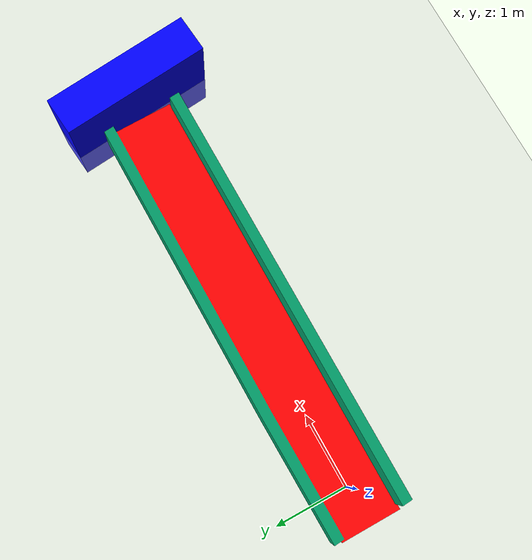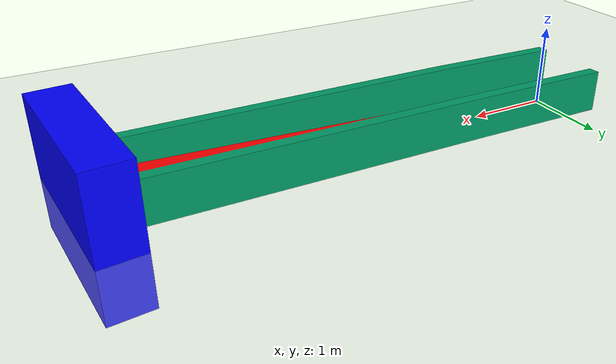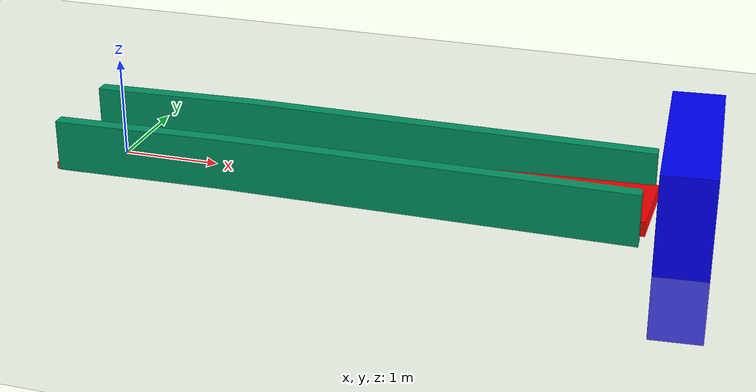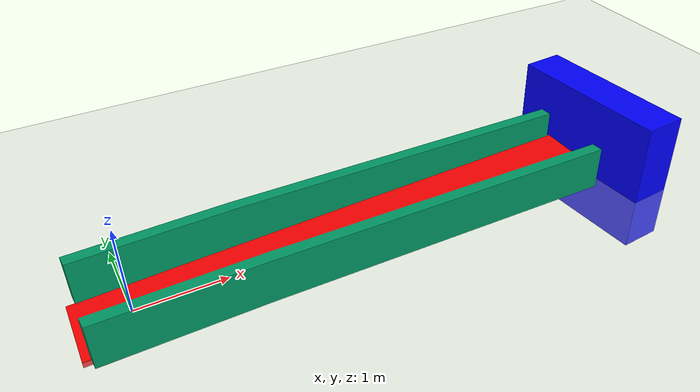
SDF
<sdf version="1.4">
  <world name="default">

    <scene>
      <ambient>0.4 0.4 0.4 1</ambient>
      <background>0.7 0.7 0.7 1</background>
      <shadows>true</shadows>
    </scene>

    <!-- A global light source -->
    <include>
      <uri>model://sun</uri>
    </include>

    <!-- A ground plane -->
    <include>
      <uri>model://ground_plane</uri>
    </include>

    <!-- cenario -->
    <include>
      <uri>model://rampa</uri>
    </include>

    <!-- caixa_azul -->
    <include>
      <uri>model://formas/caixa_azul</uri>
      <pose> 5.74 -0.05 0.162 0 0 -1.4848</pose>
    </include>

    <physics type="ode">
      <real_time_update_rate>1000.0</real_time_update_rate>
      <max_step_size>0.001</max_step_size>
      <real_time_factor>1</real_time_factor>
      <ode>
        <solver>
          <type>quick</type>
          <iters>150</iters>
          <precon_iters>0</precon_iters>
          <sor>1.400000</sor>
          <use_dynamic_moi_rescaling>1</use_dynamic_moi_rescaling>
        </solver>
        <constraints>
          <cfm>0.00001</cfm>
          <erp>0.2</erp>
          <contact_max_correcting_vel>2000.000000</contact_max_correcting_vel>
          <contact_surface_layer>0.01000</contact_surface_layer>
        </constraints>
      </ode>
    </physics>
  </world>

</sdf>

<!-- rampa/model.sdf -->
<sdf version='1.6'>
  <model name='rampa'>
    <link name='link'>
      <self_collide>0</self_collide>
      <enable_wind>0</enable_wind>
      <kinematic>0</kinematic>
      <pose frame=''>0 0 0 0 -0 0</pose>
      <gravity>1</gravity>
      <inertial>
        <mass>1</mass>
        <pose frame=''>0 0 0 0 -0 0</pose>
        <inertia>
          <ixx>1</ixx>
          <ixy>0</ixy>
          <ixz>0</ixz>
          <iyy>1</iyy>
          <iyz>0</iyz>
          <izz>1</izz>
        </inertia>
      </inertial>
      <visual name='visual'>
        <geometry>
          <mesh>
            <uri>/home/borg/catkin_ws/src/my_simulation/models/rampinha/meshes/rampa.dae</uri>
          </mesh>
        </geometry>
        <pose frame=''>0 0 0 0 -0 0</pose>
        <transparency>0</transparency>
        <cast_shadows>1</cast_shadows>
        <material>
          <shader type='vertex'>
            <normal_map>__default__</normal_map>
          </shader>
        </material>
      </visual>
      <collision name='collision'>
        <laser_retro>0</laser_retro>
        <max_contacts>10</max_contacts>
        <pose frame=''>0 0 0 0 -0 0</pose>
        <geometry>
          <mesh>
            <uri>/home/borg/catkin_ws/src/my_simulation/models/rampinha/meshes/rampa.dae</uri>
            <scale>1 1 1</scale>
          </mesh>
        </geometry>
        <surface>
          <friction>
            <ode>
              <mu>1</mu>
              <mu2>1</mu2>
              <fdir1>0 0 0</fdir1>
              <slip1>0</slip1>
              <slip2>0</slip2>
            </ode>
            <torsional>
              <coefficient>1</coefficient>
              <patch_radius>0</patch_radius>
              <surface_radius>0</surface_radius>
              <use_patch_radius>1</use_patch_radius>
              <ode>
                <slip>0</slip>
              </ode>
            </torsional>
          </friction>
          <bounce>
            <restitution_coefficient>0</restitution_coefficient>
            <threshold>1e+06</threshold>
          </bounce>
          <contact>
            <collide_without_contact>0</collide_without_contact>
            <collide_without_contact_bitmask>1</collide_without_contact_bitmask>
            <collide_bitmask>1</collide_bitmask>
            <ode>
              <soft_cfm>0</soft_cfm>
              <soft_erp>0.2</soft_erp>
              <kp>4e+12</kp>
              <kd>1</kd>
              <max_vel>0.01</max_vel>
              <min_depth>0</min_depth>
            </ode>
            <bullet>
              <split_impulse>1</split_impulse>
              <split_impulse_penetration_threshold>-0.01</split_impulse_penetration_threshold>
              <soft_cfm>0</soft_cfm>
              <soft_erp>0.2</soft_erp>
              <kp>4e+12</kp>
              <kd>1</kd>
            </bullet>
          </contact>
        </surface>
      </collision>
    </link>
    <static>1</static>
    <allow_auto_disable>1</allow_auto_disable>
  </model>
</sdf>

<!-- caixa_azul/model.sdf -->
<sdf version='1.6'>
  <model name='caixa_azul'>
    <link name='link'>
      <inertial>
        <mass>5.24856</mass>
        <inertia>
          <ixx>1.24839</ixx>
          <ixy>0</ixy>
          <ixz>0</ixz>
          <iyy>2.87035</iyy>
          <iyz>0</iyz>
          <izz>1.84376</izz>
        </inertia>
        <pose frame=''>0 0 0 0 -0 0</pose>
      </inertial>
      <self_collide>0</self_collide>
      <enable_wind>0</enable_wind>
      <kinematic>0</kinematic>
      <pose frame=''>0 0 0 0 -0 0</pose>
      <gravity>1</gravity>
      <visual name='visual'>
        <geometry>
          <box>
            <size>1.99045 0.503545 1.61267</size>
          </box>
        </geometry>
        <material>
          <script>
            <name>Gazebo/Grey</name>
            <uri>file://media/materials/scripts/gazebo.material</uri>
          </script>
          <shader type='vertex'>
            <normal_map>__default__</normal_map>
          </shader>
          <ambient>0 0 1 1</ambient>
          <diffuse>0 0 1 1</diffuse>
          <specular>0 0 1 1</specular>
          <emissive>0 0 1 1</emissive>
        </material>
        <pose frame=''>0 0 0 0 -0 0</pose>
        <transparency>0</transparency>
        <cast_shadows>1</cast_shadows>
      </visual>
      <collision name='collision'>
        <laser_retro>0</laser_retro>
        <max_contacts>10</max_contacts>
        <pose frame=''>0 0 0 0 -0 0</pose>
        <geometry>
          <box>
            <size>1.99045 0.503545 1.61267</size>
          </box>
        </geometry>
        <surface>
          <friction>
            <ode>
              <mu>1</mu>
              <mu2>1</mu2>
              <fdir1>0 0 0</fdir1>
              <slip1>0</slip1>
              <slip2>0</slip2>
            </ode>
            <torsional>
              <coefficient>1</coefficient>
              <patch_radius>0</patch_radius>
              <surface_radius>0</surface_radius>
              <use_patch_radius>1</use_patch_radius>
              <ode>
                <slip>0</slip>
              </ode>
            </torsional>
          </friction>
          <bounce>
            <restitution_coefficient>0</restitution_coefficient>
            <threshold>1e+06</threshold>
          </bounce>
          <contact>
            <collide_without_contact>0</collide_without_contact>
            <collide_without_contact_bitmask>1</collide_without_contact_bitmask>
            <collide_bitmask>1</collide_bitmask>
            <ode>
              <soft_cfm>0</soft_cfm>
              <soft_erp>0.2</soft_erp>
              <kp>1e+13</kp>
              <kd>1</kd>
              <max_vel>0.01</max_vel>
              <min_depth>0</min_depth>
            </ode>
            <bullet>
              <split_impulse>1</split_impulse>
              <split_impulse_penetration_threshold>-0.01</split_impulse_penetration_threshold>
              <soft_cfm>0</soft_cfm>
              <soft_erp>0.2</soft_erp>
              <kp>1e+13</kp>
              <kd>1</kd>
            </bullet>
          </contact>
        </surface>
      </collision>
    </link>
    <static>0</static>
    <allow_auto_disable>1</allow_auto_disable>
  </model>
</sdf>
